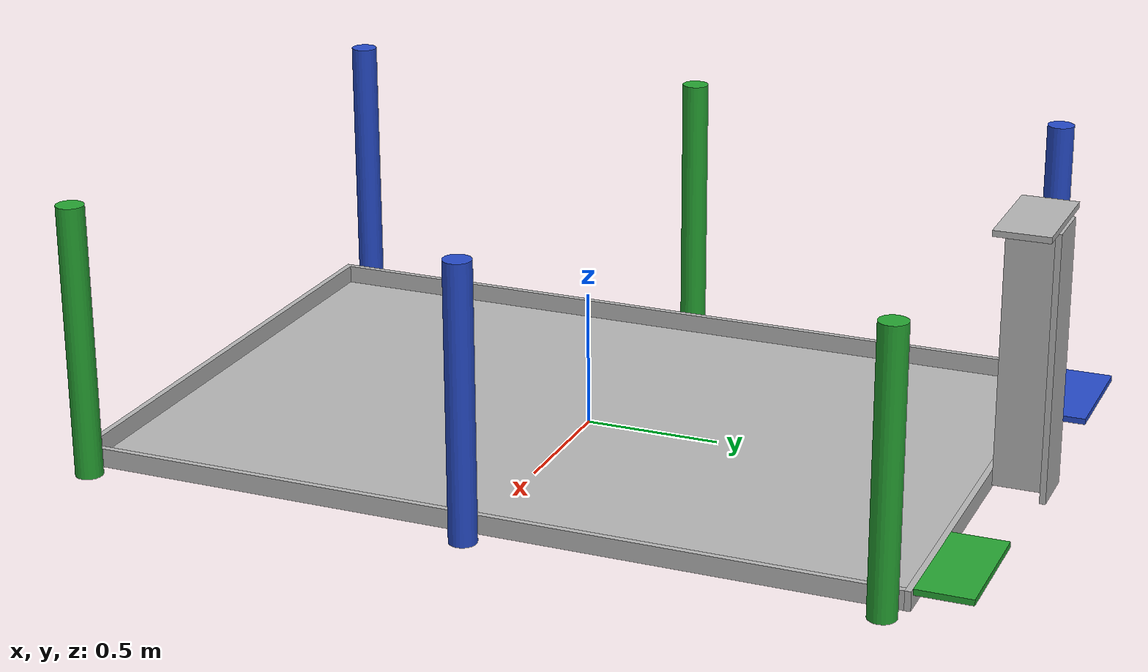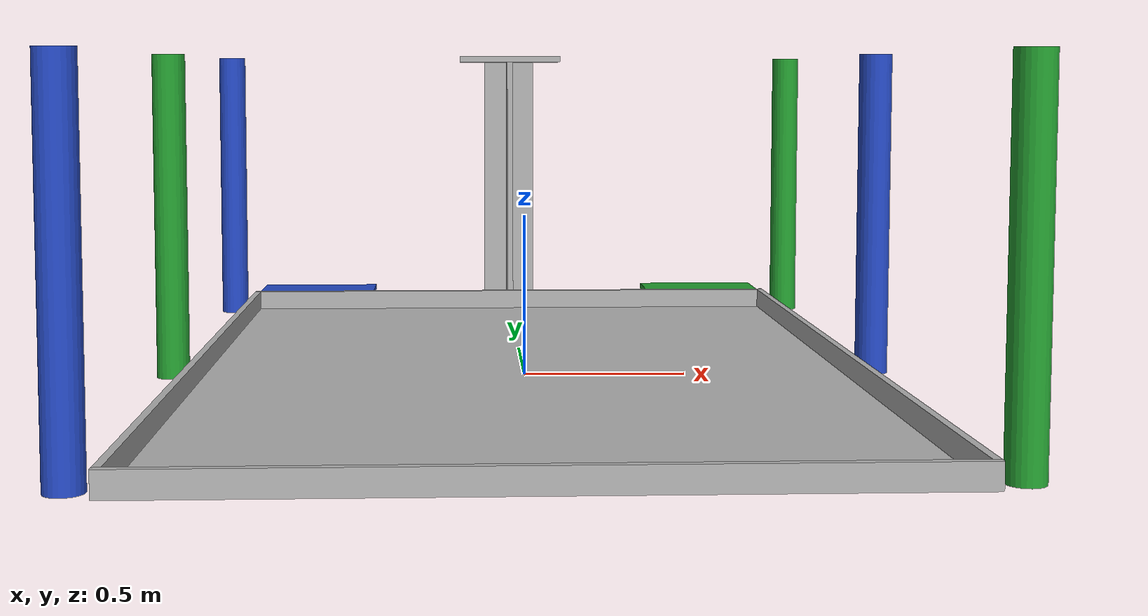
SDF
<?xml version='1.0'?>
<sdf version='1.7'>
  <model name='table2023'>
    <static>true</static>
    <link name="floor">
      <pose>0 0 0 0 0 0</pose>
      <collision name="collision">
        <geometry>
          <plane>
            <normal>0 0 1</normal>
            <size>2 3</size>
          </plane>
        </geometry>
        <surface>
          <friction>
            <ode>
              <mu>100</mu>
              <mu2>50</mu2>
            </ode>
          </friction>
        </surface>
      </collision>
      <visual name="visual">
        <cast_shadows>false</cast_shadows>
        <geometry>
          <plane>
            <normal>0 0 1</normal>
            <size>2 3</size>
          </plane>
        </geometry>
        <material>
          <script>
            <uri>model://table2023/materials/scripts</uri>
            <uri>model://table2023/materials/textures</uri>
            <name>table2023</name>
          </script>
        </material>
      </visual>
    </link>

    <link name="wall1">
      <pose>1.011 0 0.035 0 0 0</pose>
      <collision name="collision">
        <geometry>
          <box>
            <size>0.022 3 0.07</size>
          </box>
        </geometry>
      </collision>
      <visual name="visual">
        <cast_shadows>false</cast_shadows>
        <geometry>
          <box>
            <size>0.022 3 0.07</size>
          </box>
        </geometry>
      </visual>
    </link>

    <link name="wall2">
      <pose>-1.011 0 0.035 0 0 0</pose>
      <collision name="collision">
        <geometry>
          <box>
            <size>0.022 3 0.07</size>
          </box>
        </geometry>
      </collision>
      <visual name="visual">
        <cast_shadows>false</cast_shadows>
        <geometry>
          <box>
            <size>0.022 3 0.07</size>
          </box>
        </geometry>
      </visual>
    </link>

    <link name="wall3">
      <pose>0 1.511 0.035 0 0 0</pose>
      <collision name="collision">
        <geometry>
          <box>
            <size>2.044 0.022 0.07</size>
          </box>
        </geometry>
      </collision>
      <visual name="visual">
        <cast_shadows>false</cast_shadows>
        <geometry>
          <box>
            <size>2.044 0.022 0.07</size>
          </box>
        </geometry>
      </visual>
    </link>

    <link name="wall4">
      <pose>0 -1.511 0.035 0 0 0</pose>
      <collision name="collision">
        <geometry>
          <box>
            <size>2.044 0.022 0.07</size>
          </box>
        </geometry>
      </collision>
      <visual name="visual">
        <cast_shadows>false</cast_shadows>
        <geometry>
          <box>
            <size>2.044 0.022 0.07</size>
          </box>
        </geometry>
      </visual>
    </link>

  <link name="beacon_support_1">
      <pose>0 1.622 0.5 0 0 0</pose>
      <collision name="collision">
        <geometry>
          <box>
            <size>0.022 0.2 0.978</size>
          </box>
        </geometry>
      </collision>
      <visual name="visual">
        <cast_shadows>false</cast_shadows>
        <geometry>
          <box>
            <size>0.022 0.2 0.978</size>
          </box>
        </geometry>
      </visual>
    </link>

    <link name="beacon_support_2">
      <pose>0 1.722 0.5 0 0 0</pose>
      <collision name="collision">
        <geometry>
          <box>
            <size>0.2 0.022 0.978</size>
          </box>
        </geometry>
      </collision>
      <visual name="visual">
        <cast_shadows>false</cast_shadows>
        <geometry>
          <box>
            <size>0.2 0.022 0.978</size>
          </box>
        </geometry>
      </visual>
    </link>

    <link name="beacon_support_3">
      <pose>0 1.622 0.999 0 0 0</pose>
      <collision name="collision">
        <geometry>
          <box>
            <size>0.4 0.2 0.022</size>
          </box>
        </geometry>
      </collision>
      <visual name="visual">
        <cast_shadows>false</cast_shadows>
        <geometry>
          <box>
            <size>0.4 0.2 0.022</size>
          </box>
        </geometry>
      </visual>
    </link>

    <link name="basket_1">
      <pose>0.775 1.622 0.059 0 0 0</pose>
      <collision name="collision">
        <geometry>
          <box>
            <size>0.450 0.2 0.022</size>
          </box>
        </geometry>
      </collision>
      <visual name="visual">
        <cast_shadows>false</cast_shadows>
        <geometry>
          <box>
            <size>0.450 0.2 0.022</size>
          </box>
        </geometry>
        <material>
          <script>
            <name>Gazebo/Green</name>
            <uri>file://media/materials/scripts/gazebo.material</uri>
          </script>
        </material>
      </visual>
    </link>

    <link name="basket_2">
      <pose>-0.775 1.622 0.059 0 0 0</pose>
      <collision name="collision">
        <geometry>
          <box>
            <size>0.450 0.2 0.022</size>
          </box>
        </geometry>
      </collision>
      <visual name="visual">
        <cast_shadows>false</cast_shadows>
        <geometry>
          <box>
            <size>0.450 0.2 0.022</size>
          </box>
        </geometry>
        <material>
          <script>
            <name>Gazebo/Blue</name>
            <uri>file://media/materials/scripts/gazebo.material</uri>
          </script>
        </material>
      </visual>
    </link>

    <link name="beacon1">
      <pose>-1.094 1.45 0.5 0 0 0</pose>
      <collision name="collision">
        <geometry>
          <cylinder>
            <radius>0.05</radius>
            <length>1</length>
          </cylinder>
        </geometry>
      </collision>
      <visual name="visual">
        <cast_shadows>false</cast_shadows>
        <geometry>
          <cylinder>
            <radius>0.05</radius>
            <length>1</length>
          </cylinder>
        </geometry>
        <material>
          <script>
            <name>Gazebo/Blue</name>
            <uri>file://media/materials/scripts/gazebo.material</uri>
          </script>
        </material>
      </visual>
    </link>

    <link name="beacon2">
      <pose>1.094 1.45 0.5 0 0 0</pose>
      <collision name="collision">
        <geometry>
          <cylinder>
            <radius>0.05</radius>
            <length>1</length>
          </cylinder>
        </geometry>
      </collision>
      <visual name="visual">
        <cast_shadows>false</cast_shadows>
        <geometry>
          <cylinder>
            <radius>0.05</radius>
            <length>1</length>
          </cylinder>
        </geometry>
        <material>
          <script>
            <name>Gazebo/Green</name>
            <uri>file://media/materials/scripts/gazebo.material</uri>
          </script>
        </material>
      </visual>
    </link>

    <link name="beacon3">
      <pose>-1.094 0 0.5 0 0 0</pose>
      <collision name="collision">
        <geometry>
          <cylinder>
            <radius>0.05</radius>
            <length>1</length>
          </cylinder>
        </geometry>
      </collision>
      <visual name="visual">
        <cast_shadows>false</cast_shadows>
        <geometry>
          <cylinder>
            <radius>0.05</radius>
            <length>1</length>
          </cylinder>
        </geometry>
        <material>
          <script>
            <name>Gazebo/Green</name>
            <uri>file://media/materials/scripts/gazebo.material</uri>
          </script>
        </material>
      </visual>
    </link>

    <link name="beacon4">
      <pose>1.094 0 0.5 0 0 0</pose>
      <collision name="collision">
        <geometry>
          <cylinder>
            <radius>0.05</radius>
            <length>1</length>
          </cylinder>
        </geometry>
      </collision>
      <visual name="visual">
        <cast_shadows>false</cast_shadows>
        <geometry>
          <cylinder>
            <radius>0.05</radius>
            <length>1</length>
          </cylinder>
        </geometry>
        <material>
          <script>
            <name>Gazebo/Blue</name>
            <uri>file://media/materials/scripts/gazebo.material</uri>
          </script>
        </material>
      </visual>
    </link>

    <link name="beacon5">
      <pose>-1.094 -1.45 0.5 0 0 0</pose>
      <collision name="collision">
        <geometry>
          <cylinder>
            <radius>0.05</radius>
            <length>1</length>
          </cylinder>
        </geometry>
      </collision>
      <visual name="visual">
        <cast_shadows>false</cast_shadows>
        <geometry>
          <cylinder>
            <radius>0.05</radius>
            <length>1</length>
          </cylinder>
        </geometry>
        <material>
          <script>
            <name>Gazebo/Blue</name>
            <uri>file://media/materials/scripts/gazebo.material</uri>
          </script>
        </material>
      </visual>
    </link>

    <link name="beacon6">
      <pose>1.094 -1.45 0.5 0 0 0</pose>
      <collision name="collision">
        <geometry>
          <cylinder>
            <radius>0.05</radius>
            <length>1</length>
          </cylinder>
        </geometry>
      </collision>
      <visual name="visual">
        <cast_shadows>false</cast_shadows>
        <geometry>
          <cylinder>
            <radius>0.05</radius>
            <length>1</length>
          </cylinder>
        </geometry>
        <material>
          <script>
            <name>Gazebo/Green</name>
            <uri>file://media/materials/scripts/gazebo.material</uri>
          </script>
        </material>
      </visual>
    </link>

  </model>
</sdf>
